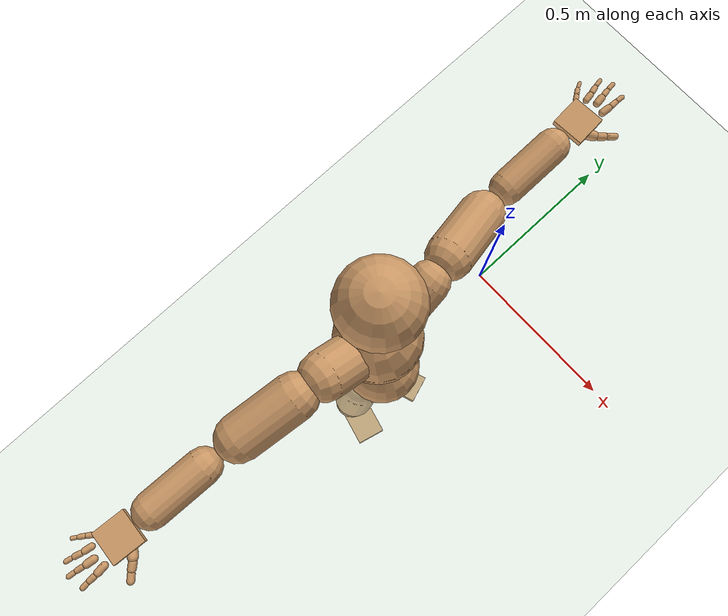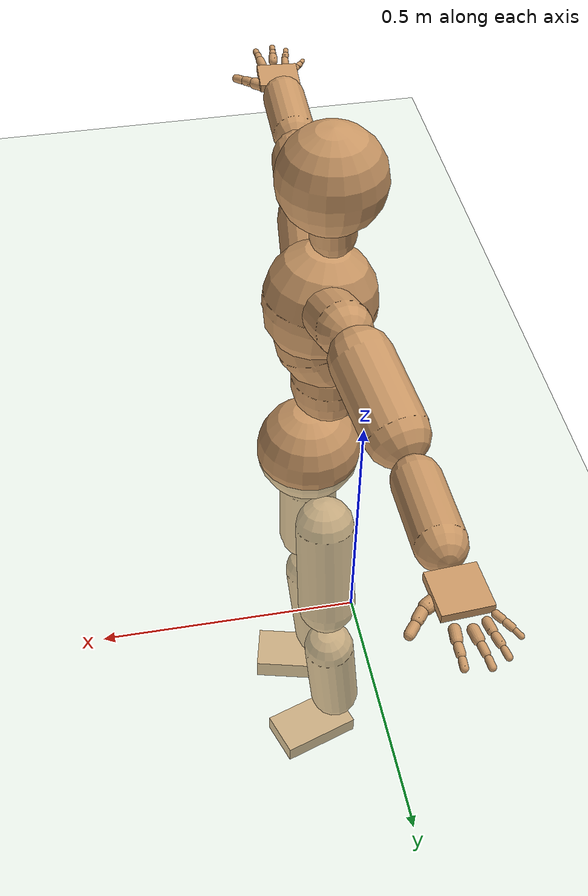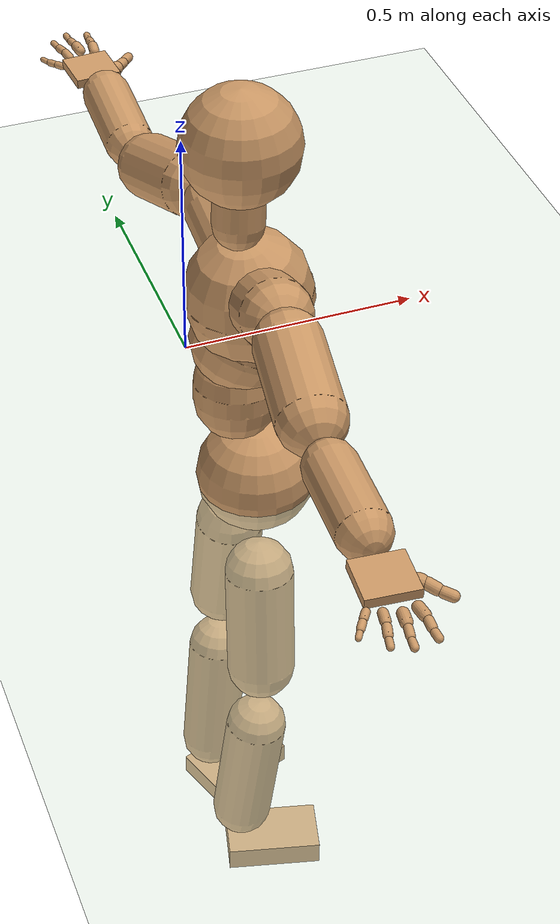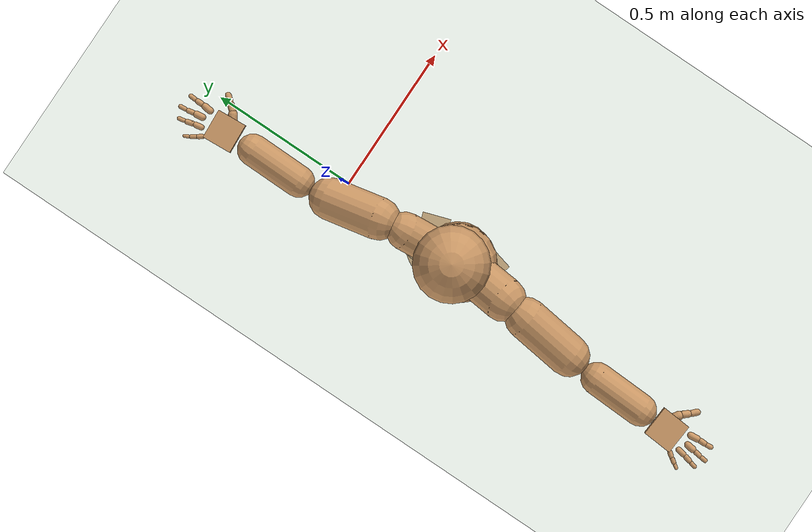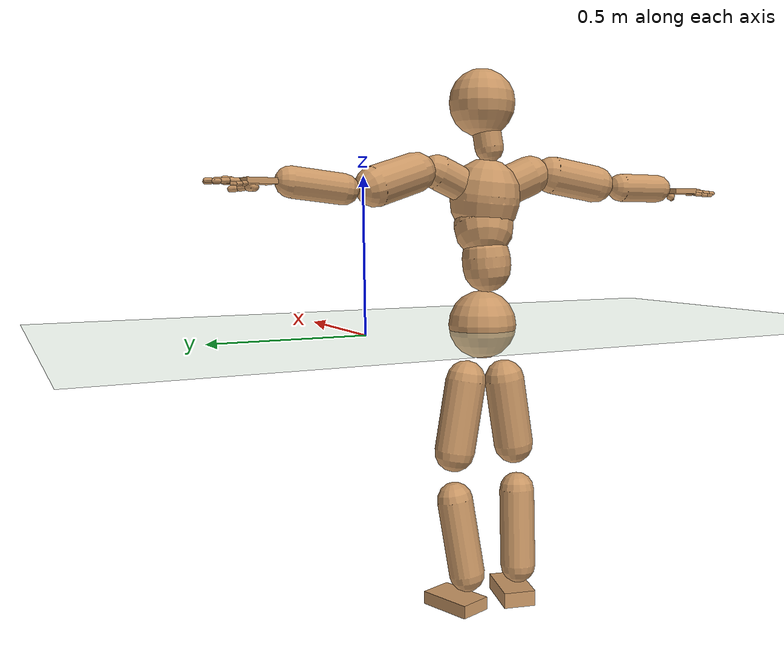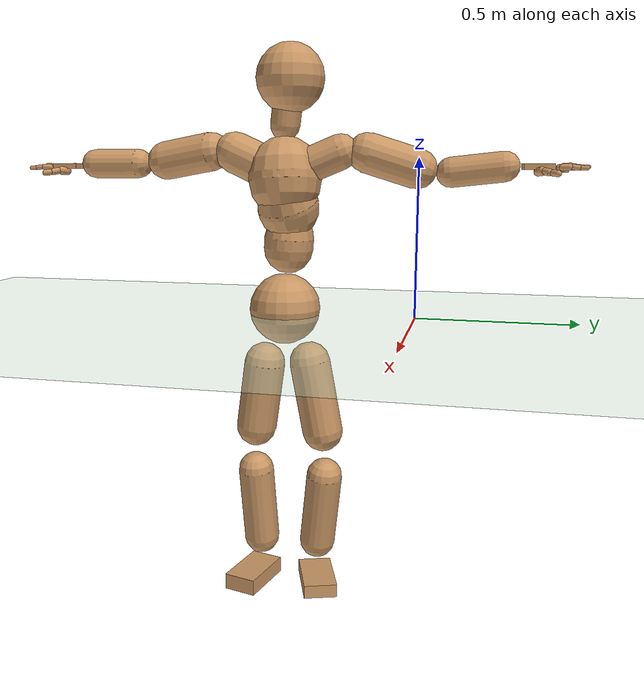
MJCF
<mujoco model="humanoid">
  <compiler coordinate="local" angle="radian"/>
  <default>
    <joint damping="0.0" armature="0.01" stiffness="0.0" limited="true"/>
    <geom conaffinity="1" condim="3" contype="7" margin="0.001" rgba="0.8 0.6 .4 1"/>
  </default>
  <asset>
    <texture type="skybox" builtin="gradient" rgb1=".4 .5 .6" rgb2="0 0 0" width="100" height="100"/>
    <texture builtin="flat" height="1278" mark="cross" markrgb="1 1 1" name="texgeom" random="0.01" rgb1="0.8 0.6 0.4" rgb2="0.8 0.6 0.4" type="cube" width="127"/>
    <texture builtin="checker" height="100" name="texplane" rgb1="0 0 0" rgb2="0.8 0.8 0.8" type="2d" width="100"/>
    <material name="MatPlane" reflectance="0.5" shininess="1" specular="1" texrepeat="60 60" texture="texplane"/>
    <material name="geom" texture="texgeom" texuniform="true"/>
  </asset>
  <worldbody>
    <light cutoff="100" diffuse="1 1 1" dir="-0 0 -1.3" directional="true" exponent="1" pos="0 0 1.3" specular=".1 .1 .1"/>
    <geom conaffinity="1" condim="3" name="floor" pos="0 0 0" rgba="0.8 0.9 0.8 1" size="100 100 .2" type="plane" material="MatPlane"/>
    <body name="Pelvis" pos="0.0014 -0.4255 0.0152">
      <freejoint name="Pelvis"/>
      <geom type="sphere" contype="1" conaffinity="1" density="500" size="0.1157" pos="0.0000 0.0000 0.0000" name="Pelvis"/>
      <body name="L_Hip" pos="-0.0264 0.0632 -0.1036">
        <joint name="L_Hip_x" type="hinge" pos="0 0 0" axis="1 0 0" stiffness="800" damping="80" armature="0.02" range="-180.0000 180.0000"/>
        <joint name="L_Hip_y" type="hinge" pos="0 0 0" axis="0 1 0" stiffness="800" damping="80" armature="0.02" range="-180.0000 180.0000"/>
        <joint name="L_Hip_z" type="hinge" pos="0 0 0" axis="0 0 1" stiffness="800" damping="80" armature="0.02" range="-180.0000 180.0000"/>
        <geom type="capsule" contype="1" conaffinity="1" density="500" fromto="-0.0007 0.0147 -0.0797 -0.0028 0.0589 -0.3189" size="0.0679" name="L_Hip"/>
        <body name="L_Knee" pos="-0.0035 0.0737 -0.3986">
          <joint name="L_Knee_x" type="hinge" pos="0 0 0" axis="1 0 0" stiffness="800" damping="80" armature="0.02" range="-180.0000 180.0000"/>
          <joint name="L_Knee_y" type="hinge" pos="0 0 0" axis="0 1 0" stiffness="800" damping="80" armature="0.02" range="-180.0000 180.0000"/>
          <joint name="L_Knee_z" type="hinge" pos="0 0 0" axis="0 0 1" stiffness="800" damping="80" armature="0.02" range="-180.0000 180.0000"/>
          <geom type="capsule" contype="1" conaffinity="1" density="500" fromto="-0.0097 -0.0100 -0.0845 -0.0390 -0.0401 -0.3382" size="0.0608" name="L_Knee"/>
          <body name="L_Ankle" pos="-0.0487 -0.0501 -0.4227">
            <joint name="L_Ankle_x" type="hinge" pos="0 0 0" axis="1 0 0" stiffness="800" damping="80" armature="0.02" range="-180.0000 180.0000"/>
            <joint name="L_Ankle_y" type="hinge" pos="0 0 0" axis="0 1 0" stiffness="800" damping="80" armature="0.02" range="-180.0000 180.0000"/>
            <joint name="L_Ankle_z" type="hinge" pos="0 0 0" axis="0 0 1" stiffness="800" damping="80" armature="0.02" range="-180.0000 180.0000"/>
            <geom type="box" contype="1" conaffinity="1" density="500" pos="0.0702 0.0235 -0.0303" size="0.0969 0.0559 0.0222" quat="0.9870 0.0000 0.0000 0.1606" name="L_Ankle"/>
            <body name="L_Toe" pos="0.1404 0.0469 -0.0606">
              <joint name="L_Toe_x" type="hinge" pos="0 0 0" axis="1 0 0" stiffness="500" damping="50" armature="0.02" range="-180.0000 180.0000"/>
              <joint name="L_Toe_y" type="hinge" pos="0 0 0" axis="0 1 0" stiffness="500" damping="50" armature="0.02" range="-180.0000 180.0000"/>
              <joint name="L_Toe_z" type="hinge" pos="0 0 0" axis="0 0 1" stiffness="500" damping="50" armature="0.02" range="-180.0000 180.0000"/>
              <geom type="box" contype="1" conaffinity="1" density="500" pos="0.0000 0.0000 0.0305" size="0.0011 0.0026 0.0011" quat="0.9863 0.0000 0.0000 0.1647" name="L_Toe"/>
            </body>
          </body>
        </body>
      </body>
      <body name="R_Hip" pos="-0.0177 -0.0654 -0.1152">
        <joint name="R_Hip_x" type="hinge" pos="0 0 0" axis="1 0 0" stiffness="800" damping="80" armature="0.02" range="-180.0000 180.0000"/>
        <joint name="R_Hip_y" type="hinge" pos="0 0 0" axis="0 1 0" stiffness="800" damping="80" armature="0.02" range="-180.0000 180.0000"/>
        <joint name="R_Hip_z" type="hinge" pos="0 0 0" axis="0 0 1" stiffness="800" damping="80" armature="0.02" range="-180.0000 180.0000"/>
        <geom type="capsule" contype="1" conaffinity="1" density="500" fromto="-0.0026 -0.0110 -0.0762 -0.0103 -0.0441 -0.3048" size="0.0679" name="R_Hip"/>
        <body name="R_Knee" pos="-0.0129 -0.0551 -0.381">
          <joint name="R_Knee_x" type="hinge" pos="0 0 0" axis="1 0 0" stiffness="800" damping="80" armature="0.02" range="-180.0000 180.0000"/>
          <joint name="R_Knee_y" type="hinge" pos="0 0 0" axis="0 1 0" stiffness="800" damping="80" armature="0.02" range="-180.0000 180.0000"/>
          <joint name="R_Knee_z" type="hinge" pos="0 0 0" axis="0 0 1" stiffness="800" damping="80" armature="0.02" range="-180.0000 180.0000"/>
          <geom type="capsule" contype="1" conaffinity="1" density="500" fromto="-0.0095 0.0037 -0.0872 -0.0380 0.0146 -0.3489" size="0.0608" name="R_Knee"/>
          <body name="R_Ankle" pos="-0.0475 0.0183 -0.4361">
            <joint name="R_Ankle_x" type="hinge" pos="0 0 0" axis="1 0 0" stiffness="800" damping="80" armature="0.02" range="-180.0000 180.0000"/>
            <joint name="R_Ankle_y" type="hinge" pos="0 0 0" axis="0 1 0" stiffness="800" damping="80" armature="0.02" range="-180.0000 180.0000"/>
            <joint name="R_Ankle_z" type="hinge" pos="0 0 0" axis="0 0 1" stiffness="800" damping="80" armature="0.02" range="-180.0000 180.0000"/>
            <geom type="box" contype="1" conaffinity="1" density="500" pos="0.0736 -0.0183 -0.0297" size="0.0969 0.0559 0.0269" quat="0.9926 0.0000 0.0000 -0.1218" name="R_Ankle"/>
            <body name="R_Toe" pos="0.1471 -0.0367 -0.0595">
              <joint name="R_Toe_x" type="hinge" pos="0 0 0" axis="1 0 0" stiffness="500" damping="50" armature="0.02" range="-180.0000 180.0000"/>
              <joint name="R_Toe_y" type="hinge" pos="0 0 0" axis="0 1 0" stiffness="500" damping="50" armature="0.02" range="-180.0000 180.0000"/>
              <joint name="R_Toe_z" type="hinge" pos="0 0 0" axis="0 0 1" stiffness="500" damping="50" armature="0.02" range="-180.0000 180.0000"/>
              <geom type="box" contype="1" conaffinity="1" density="500" pos="0.0000 0.0000 0.0253" size="0.0011 0.0026 0.0011" quat="0.9935 0.0000 0.0000 -0.1139" name="R_Toe"/>
            </body>
          </body>
        </body>
      </body>
      <body name="Torso" pos="-0.0407 -0.0025 0.1237">
        <joint name="Torso_x" type="hinge" pos="0 0 0" axis="1 0 0" stiffness="1000" damping="100" armature="0.02" range="-180.0000 180.0000"/>
        <joint name="Torso_y" type="hinge" pos="0 0 0" axis="0 1 0" stiffness="1000" damping="100" armature="0.02" range="-180.0000 180.0000"/>
        <joint name="Torso_z" type="hinge" pos="0 0 0" axis="0 0 1" stiffness="1000" damping="100" armature="0.02" range="-180.0000 180.0000"/>
        <geom type="capsule" contype="1" conaffinity="1" density="500" fromto="0.0038 0.0084 0.1052 0.0025 0.0056 0.0701" size="0.081" name="Torso"/>
        <body name="Spine" pos="0.0063 0.0139 0.1753">
          <joint name="Spine_x" type="hinge" pos="0 0 0" axis="1 0 0" stiffness="1000" damping="100" armature="0.02" range="-180.0000 180.0000"/>
          <joint name="Spine_y" type="hinge" pos="0 0 0" axis="0 1 0" stiffness="1000" damping="100" armature="0.02" range="-180.0000 180.0000"/>
          <joint name="Spine_z" type="hinge" pos="0 0 0" axis="0 0 1" stiffness="1000" damping="100" armature="0.02" range="-180.0000 180.0000"/>
          <geom type="capsule" contype="1" conaffinity="1" density="500" fromto="0.0165 -0.0062 0.0396 0.0110 -0.0041 0.0264" size="0.0999" name="Spine"/>
          <body name="Chest" pos="0.0275 -0.0103 0.066">
            <joint name="Chest_x" type="hinge" pos="0 0 0" axis="1 0 0" stiffness="1000" damping="100" armature="0.02" range="-180.0000 180.0000"/>
            <joint name="Chest_y" type="hinge" pos="0 0 0" axis="0 1 0" stiffness="1000" damping="100" armature="0.02" range="-180.0000 180.0000"/>
            <joint name="Chest_z" type="hinge" pos="0 0 0" axis="0 0 1" stiffness="1000" damping="100" armature="0.02" range="-180.0000 180.0000"/>
            <geom type="capsule" contype="1" conaffinity="1" density="500" fromto="-0.0085 -0.0038 0.0712 -0.0057 -0.0025 0.0475" size="0.1185" name="Chest"/>
            <body name="Neck" pos="-0.0319 -0.0123 0.1859">
              <joint name="Neck_x" type="hinge" pos="0 0 0" axis="1 0 0" stiffness="500" damping="50" armature="0.02" range="-180.0000 180.0000"/>
              <joint name="Neck_y" type="hinge" pos="0 0 0" axis="0 1 0" stiffness="500" damping="50" armature="0.02" range="-180.0000 180.0000"/>
              <joint name="Neck_z" type="hinge" pos="0 0 0" axis="0 0 1" stiffness="500" damping="50" armature="0.02" range="-180.0000 180.0000"/>
              <geom type="capsule" contype="1" conaffinity="1" density="500" fromto="0.0030 0.0051 0.0361 0.0119 0.0205 0.1444" size="0.0478" name="Neck"/>
              <body name="Head" pos="0.0149 0.0256 0.1805">
                <joint name="Head_x" type="hinge" pos="0 0 0" axis="1 0 0" stiffness="500" damping="50" armature="0.02" range="-180.0000 180.0000"/>
                <joint name="Head_y" type="hinge" pos="0 0 0" axis="0 1 0" stiffness="500" damping="50" armature="0.02" range="-180.0000 180.0000"/>
                <joint name="Head_z" type="hinge" pos="0 0 0" axis="0 0 1" stiffness="500" damping="50" armature="0.02" range="-180.0000 180.0000"/>
                <geom type="sphere" contype="1" conaffinity="1" density="500" size="0.1094" pos="0.0000 0.0000 0.0000" name="Head"/>
              </body>
            </body>
            <body name="L_Thorax" pos="-0.0039 0.0466 0.0848">
              <joint name="L_Thorax_x" type="hinge" pos="0 0 0" axis="1 0 0" stiffness="500" damping="50" armature="0.02" range="-180.0000 180.0000"/>
              <joint name="L_Thorax_y" type="hinge" pos="0 0 0" axis="0 1 0" stiffness="500" damping="50" armature="0.02" range="-180.0000 180.0000"/>
              <joint name="L_Thorax_z" type="hinge" pos="0 0 0" axis="0 0 1" stiffness="500" damping="50" armature="0.02" range="-180.0000 180.0000"/>
              <geom type="capsule" contype="1" conaffinity="1" density="500" fromto="-0.0025 0.0322 0.0134 -0.0102 0.1289 0.0536" size="0.0566" name="L_Thorax"/>
              <body name="L_Shoulder" pos="-0.0127 0.1611 0.0671">
                <joint name="L_Shoulder_x" type="hinge" pos="0 0 0" axis="1 0 0" stiffness="500" damping="50" armature="0.02" range="-180.0000 180.0000"/>
                <joint name="L_Shoulder_y" type="hinge" pos="0 0 0" axis="0 1 0" stiffness="500" damping="50" armature="0.02" range="-180.0000 180.0000"/>
                <joint name="L_Shoulder_z" type="hinge" pos="0 0 0" axis="0 0 1" stiffness="500" damping="50" armature="0.02" range="-180.0000 180.0000"/>
                <geom type="capsule" contype="1" conaffinity="1" density="500" fromto="-0.0106 0.0513 -0.0165 -0.0426 0.2050 -0.0659" size="0.0635" name="L_Shoulder"/>
                <body name="L_Elbow" pos="-0.0532 0.2563 -0.0823">
                  <joint name="L_Elbow_x" type="hinge" pos="0 0 0" axis="1 0 0" stiffness="500" damping="50" armature="0.02" range="-720.0000 720.0000"/>
                  <joint name="L_Elbow_y" type="hinge" pos="0 0 0" axis="0 1 0" stiffness="500" damping="50" armature="0.02" range="-720.0000 720.0000"/>
                  <joint name="L_Elbow_z" type="hinge" pos="0 0 0" axis="0 0 1" stiffness="500" damping="50" armature="0.02" range="-720.0000 720.0000"/>
                  <geom type="capsule" contype="1" conaffinity="1" density="500" fromto="0.0008 0.0538 0.0058 0.0030 0.2152 0.0231" size="0.0474" name="L_Elbow"/>
                  <body name="L_Wrist" pos="0.0038 0.269 0.0289">
                    <joint name="L_Wrist_x" type="hinge" pos="0 0 0" axis="1 0 0" stiffness="300" damping="30" armature="0.02" range="-180.0000 180.0000"/>
                    <joint name="L_Wrist_y" type="hinge" pos="0 0 0" axis="0 1 0" stiffness="300" damping="30" armature="0.02" range="-180.0000 180.0000"/>
                    <joint name="L_Wrist_z" type="hinge" pos="0 0 0" axis="0 0 1" stiffness="300" damping="30" armature="0.02" range="-180.0000 180.0000"/>
                    <geom type="box" contype="1" conaffinity="1" density="500" pos="-0.0030 0.0457 -0.0056" size="0.0453 0.0459 0.0088" quat="0.7302 0.0000 0.0000 -0.6832" name="L_Wrist"/>
                    <body name="L_Index1" pos="0.0227 0.1078 -0.0081">
                      <joint name="L_Index1_x" type="hinge" pos="0 0 0" axis="1 0 0" stiffness="100" damping="10" armature="0.02" range="-180.0000 180.0000"/>
                      <joint name="L_Index1_y" type="hinge" pos="0 0 0" axis="0 1 0" stiffness="100" damping="10" armature="0.02" range="-180.0000 180.0000"/>
                      <joint name="L_Index1_z" type="hinge" pos="0 0 0" axis="0 0 1" stiffness="100" damping="10" armature="0.02" range="-180.0000 180.0000"/>
                      <geom type="capsule" contype="1" conaffinity="1" density="500" fromto="0.0008 0.0068 0.0004 0.0031 0.0271 0.0015" size="0.0102" name="L_Index1"/>
                      <body name="L_Index2" pos="0.0039 0.0339 0.0019">
                        <joint name="L_Index2_x" type="hinge" pos="0 0 0" axis="1 0 0" stiffness="100" damping="10" armature="0.02" range="-180.0000 180.0000"/>
                        <joint name="L_Index2_y" type="hinge" pos="0 0 0" axis="0 1 0" stiffness="100" damping="10" armature="0.02" range="-180.0000 180.0000"/>
                        <joint name="L_Index2_z" type="hinge" pos="0 0 0" axis="0 0 1" stiffness="100" damping="10" armature="0.02" range="-180.0000 180.0000"/>
                        <geom type="capsule" contype="1" conaffinity="1" density="500" fromto="-0.0000 0.0048 -0.0006 -0.0002 0.0190 -0.0023" size="0.0083" name="L_Index2"/>
                        <body name="L_Index3" pos="-0.0002 0.0238 -0.0029">
                          <joint name="L_Index3_x" type="hinge" pos="0 0 0" axis="1 0 0" stiffness="100" damping="10" armature="0.02" range="-180.0000 180.0000"/>
                          <joint name="L_Index3_y" type="hinge" pos="0 0 0" axis="0 1 0" stiffness="100" damping="10" armature="0.02" range="-180.0000 180.0000"/>
                          <joint name="L_Index3_z" type="hinge" pos="0 0 0" axis="0 0 1" stiffness="100" damping="10" armature="0.02" range="-180.0000 180.0000"/>
                          <geom type="capsule" contype="1" conaffinity="1" density="500" fromto="0.0004 0.0052 -0.0002 0.0014 0.0206 -0.0007" size="0.007" name="L_Index3"/>
                        </body>
                      </body>
                    </body>
                    <body name="L_Middle1" pos="-0.0036 0.1158 -0.0048">
                      <joint name="L_Middle1_x" type="hinge" pos="0 0 0" axis="1 0 0" stiffness="100" damping="10" armature="0.02" range="-180.0000 180.0000"/>
                      <joint name="L_Middle1_y" type="hinge" pos="0 0 0" axis="0 1 0" stiffness="100" damping="10" armature="0.02" range="-180.0000 180.0000"/>
                      <joint name="L_Middle1_z" type="hinge" pos="0 0 0" axis="0 0 1" stiffness="100" damping="10" armature="0.02" range="-180.0000 180.0000"/>
                      <geom type="capsule" contype="1" conaffinity="1" density="500" fromto="-0.0009 0.0064 0.0001 -0.0035 0.0257 0.0006" size="0.0103" name="L_Middle1"/>
                      <body name="L_Middle2" pos="-0.0044 0.0322 0.0007">
                        <joint name="L_Middle2_x" type="hinge" pos="0 0 0" axis="1 0 0" stiffness="100" damping="10" armature="0.02" range="-180.0000 180.0000"/>
                        <joint name="L_Middle2_y" type="hinge" pos="0 0 0" axis="0 1 0" stiffness="100" damping="10" armature="0.02" range="-180.0000 180.0000"/>
                        <joint name="L_Middle2_z" type="hinge" pos="0 0 0" axis="0 0 1" stiffness="100" damping="10" armature="0.02" range="-180.0000 180.0000"/>
                        <geom type="capsule" contype="1" conaffinity="1" density="500" fromto="-0.0009 0.0049 -0.0005 -0.0035 0.0196 -0.0021" size="0.0076" name="L_Middle2"/>
                        <body name="L_Middle3" pos="-0.0044 0.0246 -0.0026">
                          <joint name="L_Middle3_x" type="hinge" pos="0 0 0" axis="1 0 0" stiffness="100" damping="10" armature="0.02" range="-180.0000 180.0000"/>
                          <joint name="L_Middle3_y" type="hinge" pos="0 0 0" axis="0 1 0" stiffness="100" damping="10" armature="0.02" range="-180.0000 180.0000"/>
                          <joint name="L_Middle3_z" type="hinge" pos="0 0 0" axis="0 0 1" stiffness="100" damping="10" armature="0.02" range="-180.0000 180.0000"/>
                          <geom type="capsule" contype="1" conaffinity="1" density="500" fromto="-0.0005 0.0053 -0.0001 -0.0019 0.0212 -0.0005" size="0.0066" name="L_Middle3"/>
                        </body>
                      </body>
                    </body>
                    <body name="L_Pinky1" pos="-0.0489 0.0887 -0.0143">
                      <joint name="L_Pinky1_x" type="hinge" pos="0 0 0" axis="1 0 0" stiffness="100" damping="10" armature="0.02" range="-180.0000 180.0000"/>
                      <joint name="L_Pinky1_y" type="hinge" pos="0 0 0" axis="0 1 0" stiffness="100" damping="10" armature="0.02" range="-180.0000 180.0000"/>
                      <joint name="L_Pinky1_z" type="hinge" pos="0 0 0" axis="0 0 1" stiffness="100" damping="10" armature="0.02" range="-180.0000 180.0000"/>
                      <geom type="capsule" contype="1" conaffinity="1" density="500" fromto="-0.0025 0.0034 -0.0004 -0.0099 0.0138 -0.0015" size="0.0073" name="L_Pinky1"/>
                      <body name="L_Pinky2" pos="-0.0123 0.0172 -0.0019">
                        <joint name="L_Pinky2_x" type="hinge" pos="0 0 0" axis="1 0 0" stiffness="100" damping="10" armature="0.02" range="-180.0000 180.0000"/>
                        <joint name="L_Pinky2_y" type="hinge" pos="0 0 0" axis="0 1 0" stiffness="100" damping="10" armature="0.02" range="-180.0000 180.0000"/>
                        <joint name="L_Pinky2_z" type="hinge" pos="0 0 0" axis="0 0 1" stiffness="100" damping="10" armature="0.02" range="-180.0000 180.0000"/>
                        <geom type="capsule" contype="1" conaffinity="1" density="500" fromto="-0.0023 0.0034 -0.0005 -0.0091 0.0136 -0.0018" size="0.0069" name="L_Pinky2"/>
                        <body name="L_Pinky3" pos="-0.0113 0.017 -0.0023">
                          <joint name="L_Pinky3_x" type="hinge" pos="0 0 0" axis="1 0 0" stiffness="100" damping="10" armature="0.02" range="-180.0000 180.0000"/>
                          <joint name="L_Pinky3_y" type="hinge" pos="0 0 0" axis="0 1 0" stiffness="100" damping="10" armature="0.02" range="-180.0000 180.0000"/>
                          <joint name="L_Pinky3_z" type="hinge" pos="0 0 0" axis="0 0 1" stiffness="100" damping="10" armature="0.02" range="-180.0000 180.0000"/>
                          <geom type="capsule" contype="1" conaffinity="1" density="500" fromto="-0.0019 0.0038 -0.0001 -0.0075 0.0152 -0.0002" size="0.0052" name="L_Pinky3"/>
                        </body>
                      </body>
                    </body>
                    <body name="L_Ring1" pos="-0.0301 0.103 -0.0079">
                      <joint name="L_Ring1_x" type="hinge" pos="0 0 0" axis="1 0 0" stiffness="100" damping="10" armature="0.02" range="-180.0000 180.0000"/>
                      <joint name="L_Ring1_y" type="hinge" pos="0 0 0" axis="0 1 0" stiffness="100" damping="10" armature="0.02" range="-180.0000 180.0000"/>
                      <joint name="L_Ring1_z" type="hinge" pos="0 0 0" axis="0 0 1" stiffness="100" damping="10" armature="0.02" range="-180.0000 180.0000"/>
                      <geom type="capsule" contype="1" conaffinity="1" density="500" fromto="-0.0010 0.0060 0.0002 -0.0040 0.0241 0.0007" size="0.0088" name="L_Ring1"/>
                      <body name="L_Ring2" pos="-0.005 0.0301 0.0009">
                        <joint name="L_Ring2_x" type="hinge" pos="0 0 0" axis="1 0 0" stiffness="100" damping="10" armature="0.02" range="-180.0000 180.0000"/>
                        <joint name="L_Ring2_y" type="hinge" pos="0 0 0" axis="0 1 0" stiffness="100" damping="10" armature="0.02" range="-180.0000 180.0000"/>
                        <joint name="L_Ring2_z" type="hinge" pos="0 0 0" axis="0 0 1" stiffness="100" damping="10" armature="0.02" range="-180.0000 180.0000"/>
                        <geom type="capsule" contype="1" conaffinity="1" density="500" fromto="-0.0014 0.0049 -0.0005 -0.0055 0.0195 -0.0020" size="0.008" name="L_Ring2"/>
                        <body name="L_Ring3" pos="-0.0069 0.0243 -0.0025">
                          <joint name="L_Ring3_x" type="hinge" pos="0 0 0" axis="1 0 0" stiffness="100" damping="10" armature="0.02" range="-180.0000 180.0000"/>
                          <joint name="L_Ring3_y" type="hinge" pos="0 0 0" axis="0 1 0" stiffness="100" damping="10" armature="0.02" range="-180.0000 180.0000"/>
                          <joint name="L_Ring3_z" type="hinge" pos="0 0 0" axis="0 0 1" stiffness="100" damping="10" armature="0.02" range="-180.0000 180.0000"/>
                          <geom type="capsule" contype="1" conaffinity="1" density="500" fromto="-0.0010 0.0053 -0.0001 -0.0039 0.0211 -0.0004" size="0.0062" name="L_Ring3"/>
                        </body>
                      </body>
                    </body>
                    <body name="L_Thumb1" pos="0.0295 0.0416 -0.021">
                      <joint name="L_Thumb1_x" type="hinge" pos="0 0 0" axis="1 0 0" stiffness="100" damping="10" armature="0.02" range="-180.0000 180.0000"/>
                      <joint name="L_Thumb1_y" type="hinge" pos="0 0 0" axis="0 1 0" stiffness="100" damping="10" armature="0.02" range="-180.0000 180.0000"/>
                      <joint name="L_Thumb1_z" type="hinge" pos="0 0 0" axis="0 0 1" stiffness="100" damping="10" armature="0.02" range="-180.0000 180.0000"/>
                      <geom type="capsule" contype="1" conaffinity="1" density="500" fromto="0.0057 0.0035 0.0005 0.0227 0.0140 0.0020" size="0.0138" name="L_Thumb1"/>
                      <body name="L_Thumb2" pos="0.0284 0.0174 0.0025">
                        <joint name="L_Thumb2_x" type="hinge" pos="0 0 0" axis="1 0 0" stiffness="100" damping="10" armature="0.02" range="-180.0000 180.0000"/>
                        <joint name="L_Thumb2_y" type="hinge" pos="0 0 0" axis="0 1 0" stiffness="100" damping="10" armature="0.02" range="-180.0000 180.0000"/>
                        <joint name="L_Thumb2_z" type="hinge" pos="0 0 0" axis="0 0 1" stiffness="100" damping="10" armature="0.02" range="-180.0000 180.0000"/>
                        <geom type="capsule" contype="1" conaffinity="1" density="500" fromto="0.0035 0.0043 -0.0010 0.0139 0.0171 -0.0039" size="0.0109" name="L_Thumb2"/>
                        <body name="L_Thumb3" pos="0.0173 0.0214 -0.0049">
                          <joint name="L_Thumb3_x" type="hinge" pos="0 0 0" axis="1 0 0" stiffness="100" damping="10" armature="0.02" range="-180.0000 180.0000"/>
                          <joint name="L_Thumb3_y" type="hinge" pos="0 0 0" axis="0 1 0" stiffness="100" damping="10" armature="0.02" range="-180.0000 180.0000"/>
                          <joint name="L_Thumb3_z" type="hinge" pos="0 0 0" axis="0 0 1" stiffness="100" damping="10" armature="0.02" range="-180.0000 180.0000"/>
                          <geom type="capsule" contype="1" conaffinity="1" density="500" fromto="0.0039 0.0047 -0.0006 0.0155 0.0187 -0.0023" size="0.0097" name="L_Thumb3"/>
                        </body>
                      </body>
                    </body>
                  </body>
                </body>
              </body>
            </body>
            <body name="R_Thorax" pos="-0.0069 -0.0534 0.0852">
              <joint name="R_Thorax_x" type="hinge" pos="0 0 0" axis="1 0 0" stiffness="500" damping="50" armature="0.02" range="-180.0000 180.0000"/>
              <joint name="R_Thorax_y" type="hinge" pos="0 0 0" axis="0 1 0" stiffness="500" damping="50" armature="0.02" range="-180.0000 180.0000"/>
              <joint name="R_Thorax_z" type="hinge" pos="0 0 0" axis="0 0 1" stiffness="500" damping="50" armature="0.02" range="-180.0000 180.0000"/>
              <geom type="capsule" contype="1" conaffinity="1" density="500" fromto="-0.0027 -0.0296 0.0131 -0.0109 -0.1185 0.0523" size="0.0664" name="R_Thorax"/>
              <body name="R_Shoulder" pos="-0.0137 -0.1481 0.0653">
                <joint name="R_Shoulder_x" type="hinge" pos="0 0 0" axis="1 0 0" stiffness="500" damping="50" armature="0.02" range="-180.0000 180.0000"/>
                <joint name="R_Shoulder_y" type="hinge" pos="0 0 0" axis="0 1 0" stiffness="500" damping="50" armature="0.02" range="-180.0000 180.0000"/>
                <joint name="R_Shoulder_z" type="hinge" pos="0 0 0" axis="0 0 1" stiffness="500" damping="50" armature="0.02" range="-180.0000 180.0000"/>
                <geom type="capsule" contype="1" conaffinity="1" density="500" fromto="-0.0070 -0.0551 -0.0095 -0.0281 -0.2206 -0.0378" size="0.0628" name="R_Shoulder"/>
                <body name="R_Elbow" pos="-0.0352 -0.2757 -0.0473">
                  <joint name="R_Elbow_x" type="hinge" pos="0 0 0" axis="1 0 0" stiffness="500" damping="50" armature="0.02" range="-720.0000 720.0000"/>
                  <joint name="R_Elbow_y" type="hinge" pos="0 0 0" axis="0 1 0" stiffness="500" damping="50" armature="0.02" range="-720.0000 720.0000"/>
                  <joint name="R_Elbow_z" type="hinge" pos="0 0 0" axis="0 0 1" stiffness="500" damping="50" armature="0.02" range="-720.0000 720.0000"/>
                  <geom type="capsule" contype="1" conaffinity="1" density="500" fromto="-0.0019 -0.0523 -0.0002 -0.0076 -0.2092 -0.0007" size="0.0485" name="R_Elbow"/>
                  <body name="R_Wrist" pos="-0.0095 -0.2614 -0.0009">
                    <joint name="R_Wrist_x" type="hinge" pos="0 0 0" axis="1 0 0" stiffness="300" damping="30" armature="0.02" range="-180.0000 180.0000"/>
                    <joint name="R_Wrist_y" type="hinge" pos="0 0 0" axis="0 1 0" stiffness="300" damping="30" armature="0.02" range="-180.0000 180.0000"/>
                    <joint name="R_Wrist_z" type="hinge" pos="0 0 0" axis="0 0 1" stiffness="300" damping="30" armature="0.02" range="-180.0000 180.0000"/>
                    <geom type="box" contype="1" conaffinity="1" density="500" pos="-0.0035 -0.0454 -0.0076" size="0.0453 0.047 0.009" quat="0.7335 0.0000 0.0000 0.6797" name="R_Wrist"/>
                    <body name="R_Index1" pos="0.0218 -0.1072 -0.0121">
                      <joint name="R_Index1_x" type="hinge" pos="0 0 0" axis="1 0 0" stiffness="100" damping="10" armature="0.02" range="-180.0000 180.0000"/>
                      <joint name="R_Index1_y" type="hinge" pos="0 0 0" axis="0 1 0" stiffness="100" damping="10" armature="0.02" range="-180.0000 180.0000"/>
                      <joint name="R_Index1_z" type="hinge" pos="0 0 0" axis="0 0 1" stiffness="100" damping="10" armature="0.02" range="-180.0000 180.0000"/>
                      <geom type="capsule" contype="1" conaffinity="1" density="500" fromto="0.0008 -0.0068 0.0004 0.0031 -0.0271 0.0015" size="0.0102" name="R_Index1"/>
                      <body name="R_Index2" pos="0.0039 -0.0339 0.0019">
                        <joint name="R_Index2_x" type="hinge" pos="0 0 0" axis="1 0 0" stiffness="100" damping="10" armature="0.02" range="-180.0000 180.0000"/>
                        <joint name="R_Index2_y" type="hinge" pos="0 0 0" axis="0 1 0" stiffness="100" damping="10" armature="0.02" range="-180.0000 180.0000"/>
                        <joint name="R_Index2_z" type="hinge" pos="0 0 0" axis="0 0 1" stiffness="100" damping="10" armature="0.02" range="-180.0000 180.0000"/>
                        <geom type="capsule" contype="1" conaffinity="1" density="500" fromto="-0.0000 -0.0048 -0.0006 -0.0002 -0.0190 -0.0023" size="0.0083" name="R_Index2"/>
                        <body name="R_Index3" pos="-0.0002 -0.0238 -0.0029">
                          <joint name="R_Index3_x" type="hinge" pos="0 0 0" axis="1 0 0" stiffness="100" damping="10" armature="0.02" range="-180.0000 180.0000"/>
                          <joint name="R_Index3_y" type="hinge" pos="0 0 0" axis="0 1 0" stiffness="100" damping="10" armature="0.02" range="-180.0000 180.0000"/>
                          <joint name="R_Index3_z" type="hinge" pos="0 0 0" axis="0 0 1" stiffness="100" damping="10" armature="0.02" range="-180.0000 180.0000"/>
                          <geom type="capsule" contype="1" conaffinity="1" density="500" fromto="0.0004 -0.0044 -0.0002 0.0014 -0.0174 -0.0007" size="0.0073" name="R_Index3"/>
                        </body>
                      </body>
                    </body>
                    <body name="R_Middle1" pos="-0.0044 -0.1151 -0.0088">
                      <joint name="R_Middle1_x" type="hinge" pos="0 0 0" axis="1 0 0" stiffness="100" damping="10" armature="0.02" range="-180.0000 180.0000"/>
                      <joint name="R_Middle1_y" type="hinge" pos="0 0 0" axis="0 1 0" stiffness="100" damping="10" armature="0.02" range="-180.0000 180.0000"/>
                      <joint name="R_Middle1_z" type="hinge" pos="0 0 0" axis="0 0 1" stiffness="100" damping="10" armature="0.02" range="-180.0000 180.0000"/>
                      <geom type="capsule" contype="1" conaffinity="1" density="500" fromto="-0.0009 -0.0064 0.0001 -0.0035 -0.0257 0.0006" size="0.0103" name="R_Middle1"/>
                      <body name="R_Middle2" pos="-0.0044 -0.0322 0.0007">
                        <joint name="R_Middle2_x" type="hinge" pos="0 0 0" axis="1 0 0" stiffness="100" damping="10" armature="0.02" range="-180.0000 180.0000"/>
                        <joint name="R_Middle2_y" type="hinge" pos="0 0 0" axis="0 1 0" stiffness="100" damping="10" armature="0.02" range="-180.0000 180.0000"/>
                        <joint name="R_Middle2_z" type="hinge" pos="0 0 0" axis="0 0 1" stiffness="100" damping="10" armature="0.02" range="-180.0000 180.0000"/>
                        <geom type="capsule" contype="1" conaffinity="1" density="500" fromto="-0.0009 -0.0049 -0.0005 -0.0035 -0.0196 -0.0021" size="0.0076" name="R_Middle2"/>
                        <body name="R_Middle3" pos="-0.0044 -0.0246 -0.0026">
                          <joint name="R_Middle3_x" type="hinge" pos="0 0 0" axis="1 0 0" stiffness="100" damping="10" armature="0.02" range="-180.0000 180.0000"/>
                          <joint name="R_Middle3_y" type="hinge" pos="0 0 0" axis="0 1 0" stiffness="100" damping="10" armature="0.02" range="-180.0000 180.0000"/>
                          <joint name="R_Middle3_z" type="hinge" pos="0 0 0" axis="0 0 1" stiffness="100" damping="10" armature="0.02" range="-180.0000 180.0000"/>
                          <geom type="capsule" contype="1" conaffinity="1" density="500" fromto="-0.0005 -0.0045 -0.0001 -0.0019 -0.0180 -0.0005" size="0.0068" name="R_Middle3"/>
                        </body>
                      </body>
                    </body>
                    <body name="R_Pinky1" pos="-0.0497 -0.088 -0.0183">
                      <joint name="R_Pinky1_x" type="hinge" pos="0 0 0" axis="1 0 0" stiffness="100" damping="10" armature="0.02" range="-180.0000 180.0000"/>
                      <joint name="R_Pinky1_y" type="hinge" pos="0 0 0" axis="0 1 0" stiffness="100" damping="10" armature="0.02" range="-180.0000 180.0000"/>
                      <joint name="R_Pinky1_z" type="hinge" pos="0 0 0" axis="0 0 1" stiffness="100" damping="10" armature="0.02" range="-180.0000 180.0000"/>
                      <geom type="capsule" contype="1" conaffinity="1" density="500" fromto="-0.0025 -0.0034 -0.0004 -0.0099 -0.0138 -0.0015" size="0.0073" name="R_Pinky1"/>
                      <body name="R_Pinky2" pos="-0.0123 -0.0172 -0.0019">
                        <joint name="R_Pinky2_x" type="hinge" pos="0 0 0" axis="1 0 0" stiffness="100" damping="10" armature="0.02" range="-180.0000 180.0000"/>
                        <joint name="R_Pinky2_y" type="hinge" pos="0 0 0" axis="0 1 0" stiffness="100" damping="10" armature="0.02" range="-180.0000 180.0000"/>
                        <joint name="R_Pinky2_z" type="hinge" pos="0 0 0" axis="0 0 1" stiffness="100" damping="10" armature="0.02" range="-180.0000 180.0000"/>
                        <geom type="capsule" contype="1" conaffinity="1" density="500" fromto="-0.0023 -0.0034 -0.0005 -0.0091 -0.0136 -0.0018" size="0.0069" name="R_Pinky2"/>
                        <body name="R_Pinky3" pos="-0.0113 -0.017 -0.0023">
                          <joint name="R_Pinky3_x" type="hinge" pos="0 0 0" axis="1 0 0" stiffness="100" damping="10" armature="0.02" range="-180.0000 180.0000"/>
                          <joint name="R_Pinky3_y" type="hinge" pos="0 0 0" axis="0 1 0" stiffness="100" damping="10" armature="0.02" range="-180.0000 180.0000"/>
                          <joint name="R_Pinky3_z" type="hinge" pos="0 0 0" axis="0 0 1" stiffness="100" damping="10" armature="0.02" range="-180.0000 180.0000"/>
                          <geom type="capsule" contype="1" conaffinity="1" density="500" fromto="-0.0019 -0.0030 -0.0001 -0.0075 -0.0120 -0.0002" size="0.0054" name="R_Pinky3"/>
                        </body>
                      </body>
                    </body>
                    <body name="R_Ring1" pos="-0.031 -0.1023 -0.0119">
                      <joint name="R_Ring1_x" type="hinge" pos="0 0 0" axis="1 0 0" stiffness="100" damping="10" armature="0.02" range="-180.0000 180.0000"/>
                      <joint name="R_Ring1_y" type="hinge" pos="0 0 0" axis="0 1 0" stiffness="100" damping="10" armature="0.02" range="-180.0000 180.0000"/>
                      <joint name="R_Ring1_z" type="hinge" pos="0 0 0" axis="0 0 1" stiffness="100" damping="10" armature="0.02" range="-180.0000 180.0000"/>
                      <geom type="capsule" contype="1" conaffinity="1" density="500" fromto="-0.0010 -0.0060 0.0002 -0.0040 -0.0241 0.0007" size="0.0088" name="R_Ring1"/>
                      <body name="R_Ring2" pos="-0.005 -0.0301 0.0009">
                        <joint name="R_Ring2_x" type="hinge" pos="0 0 0" axis="1 0 0" stiffness="100" damping="10" armature="0.02" range="-180.0000 180.0000"/>
                        <joint name="R_Ring2_y" type="hinge" pos="0 0 0" axis="0 1 0" stiffness="100" damping="10" armature="0.02" range="-180.0000 180.0000"/>
                        <joint name="R_Ring2_z" type="hinge" pos="0 0 0" axis="0 0 1" stiffness="100" damping="10" armature="0.02" range="-180.0000 180.0000"/>
                        <geom type="capsule" contype="1" conaffinity="1" density="500" fromto="-0.0014 -0.0049 -0.0005 -0.0055 -0.0195 -0.0020" size="0.008" name="R_Ring2"/>
                        <body name="R_Ring3" pos="-0.0069 -0.0243 -0.0025">
                          <joint name="R_Ring3_x" type="hinge" pos="0 0 0" axis="1 0 0" stiffness="100" damping="10" armature="0.02" range="-180.0000 180.0000"/>
                          <joint name="R_Ring3_y" type="hinge" pos="0 0 0" axis="0 1 0" stiffness="100" damping="10" armature="0.02" range="-180.0000 180.0000"/>
                          <joint name="R_Ring3_z" type="hinge" pos="0 0 0" axis="0 0 1" stiffness="100" damping="10" armature="0.02" range="-180.0000 180.0000"/>
                          <geom type="capsule" contype="1" conaffinity="1" density="500" fromto="-0.0010 -0.0045 -0.0001 -0.0039 -0.0179 -0.0004" size="0.0064" name="R_Ring3"/>
                        </body>
                      </body>
                    </body>
                    <body name="R_Thumb1" pos="0.0287 -0.041 -0.025">
                      <joint name="R_Thumb1_x" type="hinge" pos="0 0 0" axis="1 0 0" stiffness="100" damping="10" armature="0.02" range="-180.0000 180.0000"/>
                      <joint name="R_Thumb1_y" type="hinge" pos="0 0 0" axis="0 1 0" stiffness="100" damping="10" armature="0.02" range="-180.0000 180.0000"/>
                      <joint name="R_Thumb1_z" type="hinge" pos="0 0 0" axis="0 0 1" stiffness="100" damping="10" armature="0.02" range="-180.0000 180.0000"/>
                      <geom type="capsule" contype="1" conaffinity="1" density="500" fromto="0.0057 -0.0035 0.0005 0.0227 -0.0140 0.0020" size="0.0138" name="R_Thumb1"/>
                      <body name="R_Thumb2" pos="0.0284 -0.0174 0.0025">
                        <joint name="R_Thumb2_x" type="hinge" pos="0 0 0" axis="1 0 0" stiffness="100" damping="10" armature="0.02" range="-180.0000 180.0000"/>
                        <joint name="R_Thumb2_y" type="hinge" pos="0 0 0" axis="0 1 0" stiffness="100" damping="10" armature="0.02" range="-180.0000 180.0000"/>
                        <joint name="R_Thumb2_z" type="hinge" pos="0 0 0" axis="0 0 1" stiffness="100" damping="10" armature="0.02" range="-180.0000 180.0000"/>
                        <geom type="capsule" contype="1" conaffinity="1" density="500" fromto="0.0035 -0.0043 -0.0010 0.0139 -0.0171 -0.0039" size="0.0109" name="R_Thumb2"/>
                        <body name="R_Thumb3" pos="0.0173 -0.0214 -0.0049">
                          <joint name="R_Thumb3_x" type="hinge" pos="0 0 0" axis="1 0 0" stiffness="100" damping="10" armature="0.02" range="-180.0000 180.0000"/>
                          <joint name="R_Thumb3_y" type="hinge" pos="0 0 0" axis="0 1 0" stiffness="100" damping="10" armature="0.02" range="-180.0000 180.0000"/>
                          <joint name="R_Thumb3_z" type="hinge" pos="0 0 0" axis="0 0 1" stiffness="100" damping="10" armature="0.02" range="-180.0000 180.0000"/>
                          <geom type="capsule" contype="1" conaffinity="1" density="500" fromto="0.0039 -0.0039 -0.0006 0.0155 -0.0155 -0.0023" size="0.0099" name="R_Thumb3"/>
                        </body>
                      </body>
                    </body>
                  </body>
                </body>
              </body>
            </body>
          </body>
        </body>
      </body>
    </body>
  </worldbody>
  <actuator>
    <motor name="L_Hip_x" joint="L_Hip_x" gear="500"/>
    <motor name="L_Hip_y" joint="L_Hip_y" gear="500"/>
    <motor name="L_Hip_z" joint="L_Hip_z" gear="500"/>
    <motor name="L_Knee_x" joint="L_Knee_x" gear="500"/>
    <motor name="L_Knee_y" joint="L_Knee_y" gear="500"/>
    <motor name="L_Knee_z" joint="L_Knee_z" gear="500"/>
    <motor name="L_Ankle_x" joint="L_Ankle_x" gear="500"/>
    <motor name="L_Ankle_y" joint="L_Ankle_y" gear="500"/>
    <motor name="L_Ankle_z" joint="L_Ankle_z" gear="500"/>
    <motor name="L_Toe_x" joint="L_Toe_x" gear="500"/>
    <motor name="L_Toe_y" joint="L_Toe_y" gear="500"/>
    <motor name="L_Toe_z" joint="L_Toe_z" gear="500"/>
    <motor name="R_Hip_x" joint="R_Hip_x" gear="500"/>
    <motor name="R_Hip_y" joint="R_Hip_y" gear="500"/>
    <motor name="R_Hip_z" joint="R_Hip_z" gear="500"/>
    <motor name="R_Knee_x" joint="R_Knee_x" gear="500"/>
    <motor name="R_Knee_y" joint="R_Knee_y" gear="500"/>
    <motor name="R_Knee_z" joint="R_Knee_z" gear="500"/>
    <motor name="R_Ankle_x" joint="R_Ankle_x" gear="500"/>
    <motor name="R_Ankle_y" joint="R_Ankle_y" gear="500"/>
    <motor name="R_Ankle_z" joint="R_Ankle_z" gear="500"/>
    <motor name="R_Toe_x" joint="R_Toe_x" gear="500"/>
    <motor name="R_Toe_y" joint="R_Toe_y" gear="500"/>
    <motor name="R_Toe_z" joint="R_Toe_z" gear="500"/>
    <motor name="Torso_x" joint="Torso_x" gear="500"/>
    <motor name="Torso_y" joint="Torso_y" gear="500"/>
    <motor name="Torso_z" joint="Torso_z" gear="500"/>
    <motor name="Spine_x" joint="Spine_x" gear="500"/>
    <motor name="Spine_y" joint="Spine_y" gear="500"/>
    <motor name="Spine_z" joint="Spine_z" gear="500"/>
    <motor name="Chest_x" joint="Chest_x" gear="500"/>
    <motor name="Chest_y" joint="Chest_y" gear="500"/>
    <motor name="Chest_z" joint="Chest_z" gear="500"/>
    <motor name="Neck_x" joint="Neck_x" gear="500"/>
    <motor name="Neck_y" joint="Neck_y" gear="500"/>
    <motor name="Neck_z" joint="Neck_z" gear="500"/>
    <motor name="Head_x" joint="Head_x" gear="500"/>
    <motor name="Head_y" joint="Head_y" gear="500"/>
    <motor name="Head_z" joint="Head_z" gear="500"/>
    <motor name="L_Thorax_x" joint="L_Thorax_x" gear="500"/>
    <motor name="L_Thorax_y" joint="L_Thorax_y" gear="500"/>
    <motor name="L_Thorax_z" joint="L_Thorax_z" gear="500"/>
    <motor name="L_Shoulder_x" joint="L_Shoulder_x" gear="500"/>
    <motor name="L_Shoulder_y" joint="L_Shoulder_y" gear="500"/>
    <motor name="L_Shoulder_z" joint="L_Shoulder_z" gear="500"/>
    <motor name="L_Elbow_x" joint="L_Elbow_x" gear="500"/>
    <motor name="L_Elbow_y" joint="L_Elbow_y" gear="500"/>
    <motor name="L_Elbow_z" joint="L_Elbow_z" gear="500"/>
    <motor name="L_Wrist_x" joint="L_Wrist_x" gear="500"/>
    <motor name="L_Wrist_y" joint="L_Wrist_y" gear="500"/>
    <motor name="L_Wrist_z" joint="L_Wrist_z" gear="500"/>
    <motor name="L_Index1_x" joint="L_Index1_x" gear="500"/>
    <motor name="L_Index1_y" joint="L_Index1_y" gear="500"/>
    <motor name="L_Index1_z" joint="L_Index1_z" gear="500"/>
    <motor name="L_Index2_x" joint="L_Index2_x" gear="500"/>
    <motor name="L_Index2_y" joint="L_Index2_y" gear="500"/>
    <motor name="L_Index2_z" joint="L_Index2_z" gear="500"/>
    <motor name="L_Index3_x" joint="L_Index3_x" gear="500"/>
    <motor name="L_Index3_y" joint="L_Index3_y" gear="500"/>
    <motor name="L_Index3_z" joint="L_Index3_z" gear="500"/>
    <motor name="L_Middle1_x" joint="L_Middle1_x" gear="500"/>
    <motor name="L_Middle1_y" joint="L_Middle1_y" gear="500"/>
    <motor name="L_Middle1_z" joint="L_Middle1_z" gear="500"/>
    <motor name="L_Middle2_x" joint="L_Middle2_x" gear="500"/>
    <motor name="L_Middle2_y" joint="L_Middle2_y" gear="500"/>
    <motor name="L_Middle2_z" joint="L_Middle2_z" gear="500"/>
    <motor name="L_Middle3_x" joint="L_Middle3_x" gear="500"/>
    <motor name="L_Middle3_y" joint="L_Middle3_y" gear="500"/>
    <motor name="L_Middle3_z" joint="L_Middle3_z" gear="500"/>
    <motor name="L_Pinky1_x" joint="L_Pinky1_x" gear="500"/>
    <motor name="L_Pinky1_y" joint="L_Pinky1_y" gear="500"/>
    <motor name="L_Pinky1_z" joint="L_Pinky1_z" gear="500"/>
    <motor name="L_Pinky2_x" joint="L_Pinky2_x" gear="500"/>
    <motor name="L_Pinky2_y" joint="L_Pinky2_y" gear="500"/>
    <motor name="L_Pinky2_z" joint="L_Pinky2_z" gear="500"/>
    <motor name="L_Pinky3_x" joint="L_Pinky3_x" gear="500"/>
    <motor name="L_Pinky3_y" joint="L_Pinky3_y" gear="500"/>
    <motor name="L_Pinky3_z" joint="L_Pinky3_z" gear="500"/>
    <motor name="L_Ring1_x" joint="L_Ring1_x" gear="500"/>
    <motor name="L_Ring1_y" joint="L_Ring1_y" gear="500"/>
    <motor name="L_Ring1_z" joint="L_Ring1_z" gear="500"/>
    <motor name="L_Ring2_x" joint="L_Ring2_x" gear="500"/>
    <motor name="L_Ring2_y" joint="L_Ring2_y" gear="500"/>
    <motor name="L_Ring2_z" joint="L_Ring2_z" gear="500"/>
    <motor name="L_Ring3_x" joint="L_Ring3_x" gear="500"/>
    <motor name="L_Ring3_y" joint="L_Ring3_y" gear="500"/>
    <motor name="L_Ring3_z" joint="L_Ring3_z" gear="500"/>
    <motor name="L_Thumb1_x" joint="L_Thumb1_x" gear="500"/>
    <motor name="L_Thumb1_y" joint="L_Thumb1_y" gear="500"/>
    <motor name="L_Thumb1_z" joint="L_Thumb1_z" gear="500"/>
    <motor name="L_Thumb2_x" joint="L_Thumb2_x" gear="500"/>
    <motor name="L_Thumb2_y" joint="L_Thumb2_y" gear="500"/>
    <motor name="L_Thumb2_z" joint="L_Thumb2_z" gear="500"/>
    <motor name="L_Thumb3_x" joint="L_Thumb3_x" gear="500"/>
    <motor name="L_Thumb3_y" joint="L_Thumb3_y" gear="500"/>
    <motor name="L_Thumb3_z" joint="L_Thumb3_z" gear="500"/>
    <motor name="R_Thorax_x" joint="R_Thorax_x" gear="500"/>
    <motor name="R_Thorax_y" joint="R_Thorax_y" gear="500"/>
    <motor name="R_Thorax_z" joint="R_Thorax_z" gear="500"/>
    <motor name="R_Shoulder_x" joint="R_Shoulder_x" gear="500"/>
    <motor name="R_Shoulder_y" joint="R_Shoulder_y" gear="500"/>
    <motor name="R_Shoulder_z" joint="R_Shoulder_z" gear="500"/>
    <motor name="R_Elbow_x" joint="R_Elbow_x" gear="500"/>
    <motor name="R_Elbow_y" joint="R_Elbow_y" gear="500"/>
    <motor name="R_Elbow_z" joint="R_Elbow_z" gear="500"/>
    <motor name="R_Wrist_x" joint="R_Wrist_x" gear="500"/>
    <motor name="R_Wrist_y" joint="R_Wrist_y" gear="500"/>
    <motor name="R_Wrist_z" joint="R_Wrist_z" gear="500"/>
    <motor name="R_Index1_x" joint="R_Index1_x" gear="500"/>
    <motor name="R_Index1_y" joint="R_Index1_y" gear="500"/>
    <motor name="R_Index1_z" joint="R_Index1_z" gear="500"/>
    <motor name="R_Index2_x" joint="R_Index2_x" gear="500"/>
    <motor name="R_Index2_y" joint="R_Index2_y" gear="500"/>
    <motor name="R_Index2_z" joint="R_Index2_z" gear="500"/>
    <motor name="R_Index3_x" joint="R_Index3_x" gear="500"/>
    <motor name="R_Index3_y" joint="R_Index3_y" gear="500"/>
    <motor name="R_Index3_z" joint="R_Index3_z" gear="500"/>
    <motor name="R_Middle1_x" joint="R_Middle1_x" gear="500"/>
    <motor name="R_Middle1_y" joint="R_Middle1_y" gear="500"/>
    <motor name="R_Middle1_z" joint="R_Middle1_z" gear="500"/>
    <motor name="R_Middle2_x" joint="R_Middle2_x" gear="500"/>
    <motor name="R_Middle2_y" joint="R_Middle2_y" gear="500"/>
    <motor name="R_Middle2_z" joint="R_Middle2_z" gear="500"/>
    <motor name="R_Middle3_x" joint="R_Middle3_x" gear="500"/>
    <motor name="R_Middle3_y" joint="R_Middle3_y" gear="500"/>
    <motor name="R_Middle3_z" joint="R_Middle3_z" gear="500"/>
    <motor name="R_Pinky1_x" joint="R_Pinky1_x" gear="500"/>
    <motor name="R_Pinky1_y" joint="R_Pinky1_y" gear="500"/>
    <motor name="R_Pinky1_z" joint="R_Pinky1_z" gear="500"/>
    <motor name="R_Pinky2_x" joint="R_Pinky2_x" gear="500"/>
    <motor name="R_Pinky2_y" joint="R_Pinky2_y" gear="500"/>
    <motor name="R_Pinky2_z" joint="R_Pinky2_z" gear="500"/>
    <motor name="R_Pinky3_x" joint="R_Pinky3_x" gear="500"/>
    <motor name="R_Pinky3_y" joint="R_Pinky3_y" gear="500"/>
    <motor name="R_Pinky3_z" joint="R_Pinky3_z" gear="500"/>
    <motor name="R_Ring1_x" joint="R_Ring1_x" gear="500"/>
    <motor name="R_Ring1_y" joint="R_Ring1_y" gear="500"/>
    <motor name="R_Ring1_z" joint="R_Ring1_z" gear="500"/>
    <motor name="R_Ring2_x" joint="R_Ring2_x" gear="500"/>
    <motor name="R_Ring2_y" joint="R_Ring2_y" gear="500"/>
    <motor name="R_Ring2_z" joint="R_Ring2_z" gear="500"/>
    <motor name="R_Ring3_x" joint="R_Ring3_x" gear="500"/>
    <motor name="R_Ring3_y" joint="R_Ring3_y" gear="500"/>
    <motor name="R_Ring3_z" joint="R_Ring3_z" gear="500"/>
    <motor name="R_Thumb1_x" joint="R_Thumb1_x" gear="500"/>
    <motor name="R_Thumb1_y" joint="R_Thumb1_y" gear="500"/>
    <motor name="R_Thumb1_z" joint="R_Thumb1_z" gear="500"/>
    <motor name="R_Thumb2_x" joint="R_Thumb2_x" gear="500"/>
    <motor name="R_Thumb2_y" joint="R_Thumb2_y" gear="500"/>
    <motor name="R_Thumb2_z" joint="R_Thumb2_z" gear="500"/>
    <motor name="R_Thumb3_x" joint="R_Thumb3_x" gear="500"/>
    <motor name="R_Thumb3_y" joint="R_Thumb3_y" gear="500"/>
    <motor name="R_Thumb3_z" joint="R_Thumb3_z" gear="500"/>
  </actuator>
  <contact>
    <exclude body1="Torso" body2="Chest"/>
    <exclude body1="Head" body2="Chest"/>
    <exclude body1="R_Knee" body2="R_Toe"/>
    <exclude body1="R_Knee" body2="L_Ankle"/>
    <exclude body1="R_Knee" body2="L_Toe"/>
    <exclude body1="L_Knee" body2="L_Toe"/>
    <exclude body1="L_Knee" body2="R_Ankle"/>
    <exclude body1="L_Knee" body2="R_Toe"/>
    <exclude body1="L_Shoulder" body2="Chest"/>
    <exclude body1="R_Shoulder" body2="Chest"/>
  </contact>
  <sensor/>
  <size njmax="700" nconmax="700"/>
</mujoco>
